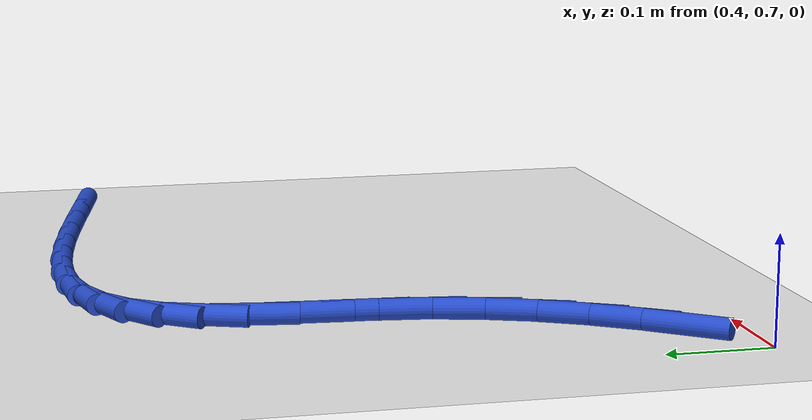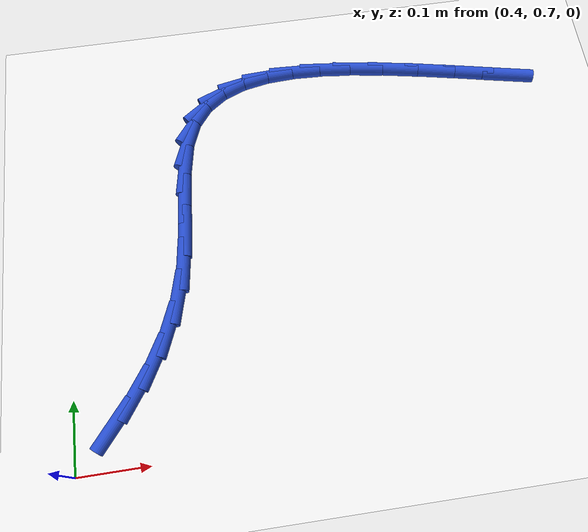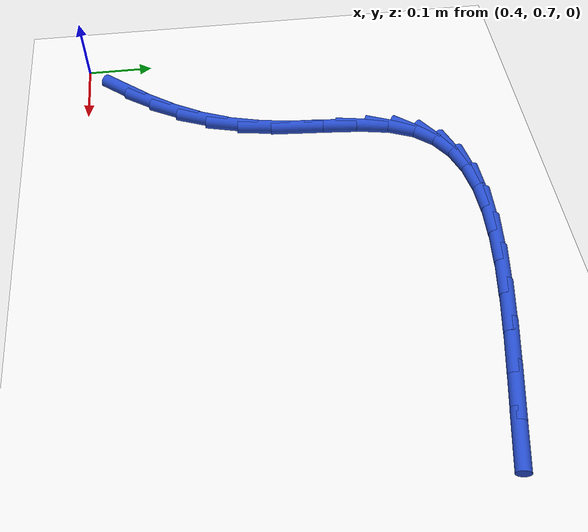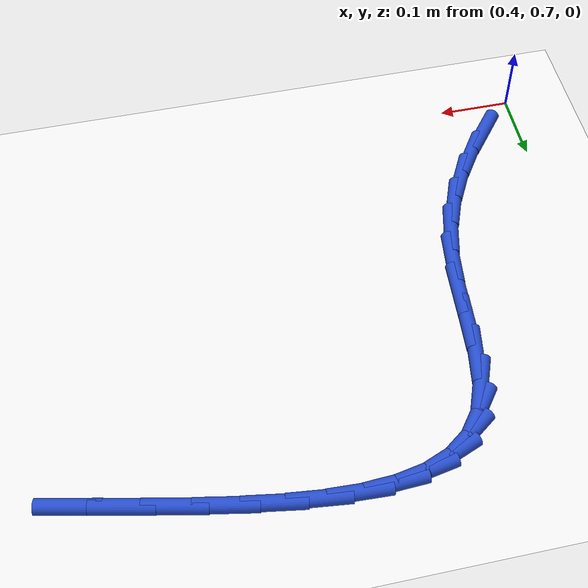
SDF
<sdf version="1.6">
 <world name="default">
  <model name="ground_plane">
   <static>1</static>
   <link name="link">
    <collision name="collision">
     <geometry><plane><normal>0 0 1</normal><size>100 100</size></plane></geometry>
     <surface><friction><ode><mu>100</mu><mu2>50</mu2></ode></friction></surface>
    </collision>
    <visual name="visual">
     <cast_shadows>0</cast_shadows>
     <geometry><plane><normal>0 0 1</normal><size>100 100</size></plane></geometry>
     <material>
      <script><uri>file://media/materials/scripts/gazebo.material</uri><name>Gazebo/WhiteGlow</name></script>
     </material>
    </visual>
   </link>
  </model>
  <model name="line">
   <link name="link_19">
    <pose>0.4556052109100448 0.7583720802645288 0.01 0 1.57 0.8945127239587646</pose>
    <collision name="collision">
     <geometry><cylinder><radius>0.01</radius><length>0.08</length></cylinder></geometry>
    </collision>
    <visual name="visual">
     <material>
      <script><name>Gazebo/Blue</name><uri>file://media/materials/scripts/gazebo.material</uri></script>
     </material>
     <geometry><cylinder><radius>0.01</radius><length>0.08</length></cylinder></geometry>
    </visual>
   </link>
   <link name="link_20">
    <pose>0.4856855599188623 0.7958538356271662 0.01 0 1.57 0.9802089847060115</pose>
    <collision name="collision">
     <geometry><cylinder><radius>0.01</radius><length>0.08</length></cylinder></geometry>
    </collision>
    <visual name="visual">
     <material>
      <script><name>Gazebo/Blue</name><uri>file://media/materials/scripts/gazebo.material</uri></script>
     </material>
     <geometry><cylinder><radius>0.01</radius><length>0.08</length></cylinder></geometry>
    </visual>
   </link>
   <link name="link_21">
    <pose>0.5121686540174738 0.8353568668964265 0.01 0 1.57 1.0829431447188298</pose>
    <collision name="collision">
     <geometry><cylinder><radius>0.01</radius><length>0.08</length></cylinder></geometry>
    </collision>
    <visual name="visual">
     <material>
      <script><name>Gazebo/Blue</name><uri>file://media/materials/scripts/gazebo.material</uri></script>
     </material>
     <geometry><cylinder><radius>0.01</radius><length>0.08</length></cylinder></geometry>
    </visual>
   </link>
   <link name="link_22">
    <pose>0.5343957832154358 0.877244762612291 0.01 0 1.57 1.2008029678384557</pose>
    <collision name="collision">
     <geometry><cylinder><radius>0.01</radius><length>0.08</length></cylinder></geometry>
    </collision>
    <visual name="visual">
     <material>
      <script><name>Gazebo/Blue</name><uri>file://media/materials/scripts/gazebo.material</uri></script>
     </material>
     <geometry><cylinder><radius>0.01</radius><length>0.08</length></cylinder></geometry>
    </visual>
   </link>
   <link name="link_23">
    <pose>0.5517082375223056 0.9218811113147412 0.01 0 1.57 1.3297051357754062</pose>
    <collision name="collision">
     <geometry><cylinder><radius>0.01</radius><length>0.08</length></cylinder></geometry>
    </collision>
    <visual name="visual">
     <material>
      <script><name>Gazebo/Blue</name><uri>file://media/materials/scripts/gazebo.material</uri></script>
     </material>
     <geometry><cylinder><radius>0.01</radius><length>0.08</length></cylinder></geometry>
    </visual>
   </link>
   <link name="link_24">
    <pose>0.5634481354967837 0.9696288172080912 0.01 0 1.57 1.4455127388908906</pose>
    <collision name="collision">
     <geometry><cylinder><radius>0.01</radius><length>0.08</length></cylinder></geometry>
    </collision>
    <visual name="visual">
     <material>
      <script><name>Gazebo/Blue</name><uri>file://media/materials/scripts/gazebo.material</uri></script>
     </material>
     <geometry><cylinder><radius>0.01</radius><length>0.08</length></cylinder></geometry>
    </visual>
   </link>
   <link name="link_25">
    <pose>0.5698104761728964 1.020146352498578 0.01 0 1.57 1.4993683478524291</pose>
    <collision name="collision">
     <geometry><cylinder><radius>0.01</radius><length>0.08</length></cylinder></geometry>
    </collision>
    <visual name="visual">
     <material>
      <script><name>Gazebo/Blue</name><uri>file://media/materials/scripts/gazebo.material</uri></script>
     </material>
     <geometry><cylinder><radius>0.01</radius><length>0.08</length></cylinder></geometry>
    </visual>
   </link>
   <link name="link_26">
    <pose>0.5734531856451275 1.0710579481587523 0.01 0 1.57 1.4881480987408857</pose>
    <collision name="collision">
     <geometry><cylinder><radius>0.01</radius><length>0.08</length></cylinder></geometry>
    </collision>
    <visual name="visual">
     <material>
      <script><name>Gazebo/Blue</name><uri>file://media/materials/scripts/gazebo.material</uri></script>
     </material>
     <geometry><cylinder><radius>0.01</radius><length>0.08</length></cylinder></geometry>
    </visual>
   </link>
   <link name="link_27">
    <pose>0.5774761488320804 1.119622801669897 0.01 0 1.57 1.399904449243594</pose>
    <collision name="collision">
     <geometry><cylinder><radius>0.01</radius><length>0.08</length></cylinder></geometry>
    </collision>
    <visual name="visual">
     <material>
      <script><name>Gazebo/Blue</name><uri>file://media/materials/scripts/gazebo.material</uri></script>
     </material>
     <geometry><cylinder><radius>0.01</radius><length>0.08</length></cylinder></geometry>
    </visual>
   </link>
   <link name="link_28">
    <pose>0.584979250652358 1.163100110513294 0.01 0 1.57 1.2007088045246785</pose>
    <collision name="collision">
     <geometry><cylinder><radius>0.01</radius><length>0.08</length></cylinder></geometry>
    </collision>
    <visual name="visual">
     <material>
      <script><name>Gazebo/Blue</name><uri>file://media/materials/scripts/gazebo.material</uri></script>
     </material>
     <geometry><cylinder><radius>0.01</radius><length>0.08</length></cylinder></geometry>
    </visual>
   </link>
   <link name="link_29">
    <pose>0.5988777635229073 1.1989243573524517 0.01 0 1.57 0.9186172230731402</pose>
    <collision name="collision">
     <geometry><cylinder><radius>0.01</radius><length>0.08</length></cylinder></geometry>
    </collision>
    <visual name="visual">
     <material>
      <script><name>Gazebo/Blue</name><uri>file://media/materials/scripts/gazebo.material</uri></script>
     </material>
     <geometry><cylinder><radius>0.01</radius><length>0.08</length></cylinder></geometry>
    </visual>
   </link>
   <link name="link_30">
    <pose>0.6199679305519616 1.2265419928117929 0.01 0 1.57 0.6283411581405366</pose>
    <collision name="collision">
     <geometry><cylinder><radius>0.01</radius><length>0.08</length></cylinder></geometry>
    </collision>
    <visual name="visual">
     <material>
      <script><name>Gazebo/Blue</name><uri>file://media/materials/scripts/gazebo.material</uri></script>
     </material>
     <geometry><cylinder><radius>0.01</radius><length>0.08</length></cylinder></geometry>
    </visual>
   </link>
   <link name="link_31">
    <pose>0.6476916340469651 1.2466854009039725 0.01 0 1.57 0.37824850765023066</pose>
    <collision name="collision">
     <geometry><cylinder><radius>0.01</radius><length>0.08</length></cylinder></geometry>
    </collision>
    <visual name="visual">
     <material>
      <script><name>Gazebo/Blue</name><uri>file://media/materials/scripts/gazebo.material</uri></script>
     </material>
     <geometry><cylinder><radius>0.01</radius><length>0.08</length></cylinder></geometry>
    </visual>
   </link>
   <link name="link_32">
    <pose>0.6814687498241567 1.2601078602819642 0.01 0 1.57 0.1876934036571288</pose>
    <collision name="collision">
     <geometry><cylinder><radius>0.01</radius><length>0.08</length></cylinder></geometry>
    </collision>
    <visual name="visual">
     <material>
      <script><name>Gazebo/Blue</name><uri>file://media/materials/scripts/gazebo.material</uri></script>
     </material>
     <geometry><cylinder><radius>0.01</radius><length>0.08</length></cylinder></geometry>
    </visual>
   </link>
   <link name="link_33">
    <pose>0.7207191536997767 1.2675626495987433 0.01 0 1.57 0.05070902438882522</pose>
    <collision name="collision">
     <geometry><cylinder><radius>0.01</radius><length>0.08</length></cylinder></geometry>
    </collision>
    <visual name="visual">
     <material>
      <script><name>Gazebo/Blue</name><uri>file://media/materials/scripts/gazebo.material</uri></script>
     </material>
     <geometry><cylinder><radius>0.01</radius><length>0.08</length></cylinder></geometry>
    </visual>
   </link>
   <link name="link_34">
    <pose>0.7648627214900647 1.2698030475072835 0.01 0 1.57 -0.04579689335121554</pose>
    <collision name="collision">
     <geometry><cylinder><radius>0.01</radius><length>0.08</length></cylinder></geometry>
    </collision>
    <visual name="visual">
     <material>
      <script><name>Gazebo/Blue</name><uri>file://media/materials/scripts/gazebo.material</uri></script>
     </material>
     <geometry><cylinder><radius>0.01</radius><length>0.08</length></cylinder></geometry>
    </visual>
   </link>
   <link name="link_35">
    <pose>0.81331932901126 1.2675823326605593 0.01 0 1.57 -0.11311165987841174</pose>
    <collision name="collision">
     <geometry><cylinder><radius>0.01</radius><length>0.08</length></cylinder></geometry>
    </collision>
    <visual name="visual">
     <material>
      <script><name>Gazebo/Blue</name><uri>file://media/materials/scripts/gazebo.material</uri></script>
     </material>
     <geometry><cylinder><radius>0.01</radius><length>0.08</length></cylinder></geometry>
    </visual>
   </link>
   <link name="link_36">
    <pose>0.8655088520796029 1.2616537837115451 0.01 0 1.57 -0.15915442153044063</pose>
    <collision name="collision">
     <geometry><cylinder><radius>0.01</radius><length>0.08</length></cylinder></geometry>
    </collision>
    <visual name="visual">
     <material>
      <script><name>Gazebo/Blue</name><uri>file://media/materials/scripts/gazebo.material</uri></script>
     </material>
     <geometry><cylinder><radius>0.01</radius><length>0.08</length></cylinder></geometry>
    </visual>
   </link>
   <link name="link_37">
    <pose>0.920851166511333 1.2527706793132154 0.01 0 1.57 -0.18910372058178332</pose>
    <collision name="collision">
     <geometry><cylinder><radius>0.01</radius><length>0.08</length></cylinder></geometry>
    </collision>
    <visual name="visual">
     <material>
      <script><name>Gazebo/Blue</name><uri>file://media/materials/scripts/gazebo.material</uri></script>
     </material>
     <geometry><cylinder><radius>0.01</radius><length>0.08</length></cylinder></geometry>
    </visual>
   </link>
   <link name="link_38">
    <pose>0.9787661481226895 1.2416862981185441 0.01 0 1.57 -0.206221466034016</pose>
    <collision name="collision">
     <geometry><cylinder><radius>0.01</radius><length>0.08</length></cylinder></geometry>
    </collision>
    <visual name="visual">
     <material>
      <script><name>Gazebo/Blue</name><uri>file://media/materials/scripts/gazebo.material</uri></script>
     </material>
     <geometry><cylinder><radius>0.01</radius><length>0.08</length></cylinder></geometry>
    </visual>
   </link>
   <link name="link_39">
    <pose>1.0386736727299128 1.229153918780506 0.01 0 1.57 -0.2124511669112916</pose>
    <collision name="collision">
     <geometry><cylinder><radius>0.01</radius><length>0.08</length></cylinder></geometry>
    </collision>
    <visual name="visual">
     <material>
      <script><name>Gazebo/Blue</name><uri>file://media/materials/scripts/gazebo.material</uri></script>
     </material>
     <geometry><cylinder><radius>0.01</radius><length>0.08</length></cylinder></geometry>
    </visual>
   </link>
   <link name="link_40">
    <pose>1.0999936161492425 1.2159268199520756 0.01 0 1.57 -0.20878784738946346</pose>
    <collision name="collision">
     <geometry><cylinder><radius>0.01</radius><length>0.08</length></cylinder></geometry>
    </collision>
    <visual name="visual">
     <material>
      <script><name>Gazebo/Blue</name><uri>file://media/materials/scripts/gazebo.material</uri></script>
     </material>
     <geometry><cylinder><radius>0.01</radius><length>0.08</length></cylinder></geometry>
    </visual>
   </link>
  </model>
 </world>
</sdf>
